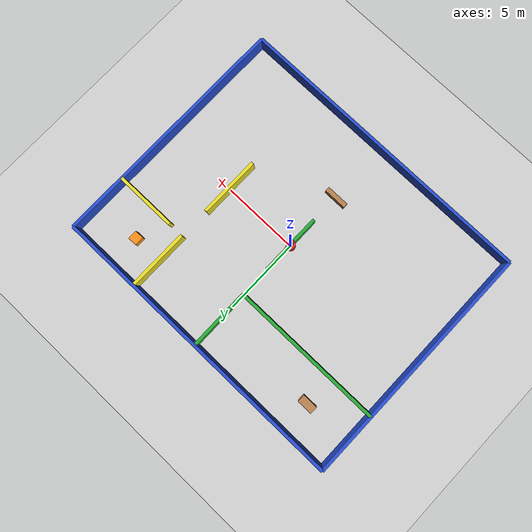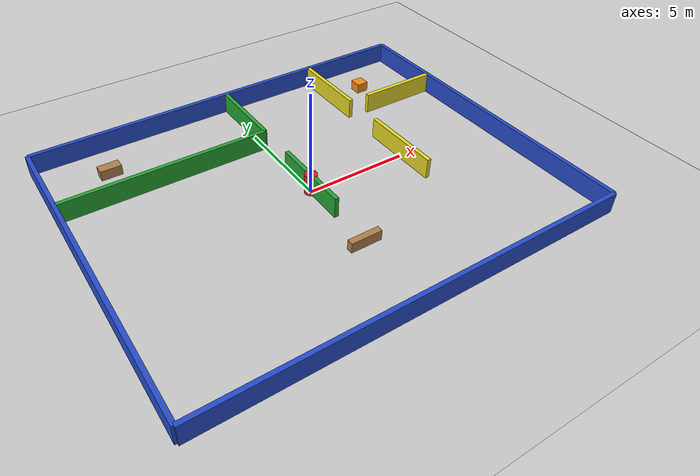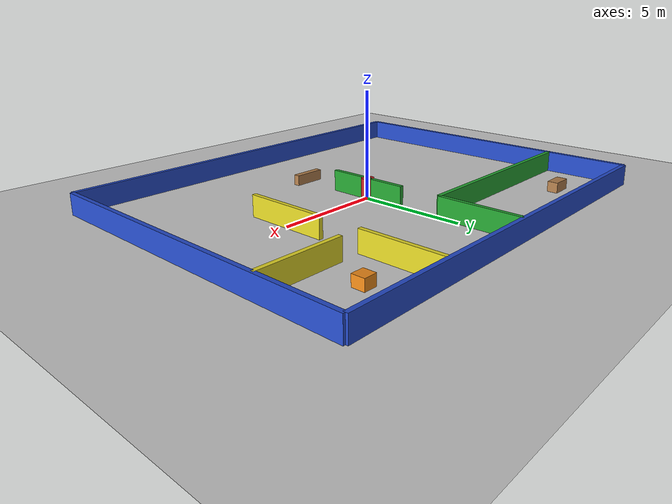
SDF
<?xml version='1.0'?>
<sdf version='1.7'>
  <world name='indoor_navigation_world'>

    <!-- 环境光照 -->
    <light name='sun' type='directional'>
      <cast_shadows>1</cast_shadows>
      <pose>0 0 10 0 -0 0</pose>
      <diffuse>0.8 0.8 0.8 1</diffuse>
      <specular>0.2 0.2 0.2 1</specular>
      <attenuation>
        <range>1000</range>
        <constant>0.9</constant>
        <linear>0.01</linear>
        <quadratic>0.001</quadratic>
      </attenuation>
      <direction>-0.5 0.1 -0.9</direction>
    </light>

    <!-- 地面 -->
    <model name='ground_plane'>
      <static>1</static>
      <link name='link'>
        <collision name='collision'>
          <geometry>
            <plane>
              <normal>0 0 1</normal>
              <size>20 20</size>
            </plane>
          </geometry>
          <surface>
            <friction>
              <ode>
                <mu>100</mu>
                <mu2>50</mu2>
              </ode>
            </friction>
          </surface>
        </collision>
        <visual name='visual'>
          <geometry>
            <plane>
              <normal>0 0 1</normal>
              <size>20 20</size>
            </plane>
          </geometry>
          <material>
            <script>
              <uri>file://media/materials/scripts/gazebo.material</uri>
              <name>Gazebo/Grey</name>
            </script>
          </material>
        </visual>
      </link>
    </model>

    <!-- ===== 墙壁定义 ===== -->

    <!-- 主走廊外墙壁 -->
    <!-- 北墙 -->
    <model name='wall_north'>
      <static>1</static>
      <pose>0 8 0.5 0 0 0</pose>
      <link name='link'>
        <collision name='collision'>
          <geometry>
            <box>
              <size>20 0.2 1</size>
            </box>
          </geometry>
        </collision>
        <visual name='visual'>
          <geometry>
            <box>
              <size>20 0.2 1</size>
            </box>
          </geometry>
          <material>
            <script>
              <name>Gazebo/Blue</name>
              <uri>file://media/materials/scripts/gazebo.material</uri>
            </script>
          </material>
        </visual>
      </link>
    </model>

    <!-- 南墙 -->
    <model name='wall_south'>
      <static>1</static>
      <pose>0 -8 0.5 0 0 0</pose>
      <link name='link'>
        <collision name='collision'>
          <geometry>
            <box>
              <size>20 0.2 1</size>
            </box>
          </geometry>
        </collision>
        <visual name='visual'>
          <geometry>
            <box>
              <size>20 0.2 1</size>
            </box>
          </geometry>
          <material>
            <script>
              <name>Gazebo/Blue</name>
              <uri>file://media/materials/scripts/gazebo.material</uri>
            </script>
          </material>
        </visual>
      </link>
    </model>

    <!-- 西墙 -->
    <model name='wall_west'>
      <static>1</static>
      <pose>-10 0 0.5 0 0 0</pose>
      <link name='link'>
        <collision name='collision'>
          <geometry>
            <box>
              <size>0.2 16 1</size>
            </box>
          </geometry>
        </collision>
        <visual name='visual'>
          <geometry>
            <box>
              <size>0.2 16 1</size>
            </box>
          </geometry>
          <material>
            <script>
              <name>Gazebo/Blue</name>
              <uri>file://media/materials/scripts/gazebo.material</uri>
            </script>
          </material>
        </visual>
      </link>
    </model>

    <!-- 东墙（中间有开口作为走廊连接） -->
    <model name='wall_east'>
      <static>1</static>
      <pose>10 0 0.5 0 0 0</pose>
      <link name='link'>
        <collision name='collision'>
          <geometry>
            <box>
              <size>0.2 16 1</size>
            </box>
          </geometry>
        </collision>
        <visual name='visual'>
          <geometry>
            <box>
              <size>0.2 16 1</size>
            </box>
          </geometry>
          <material>
            <script>
              <name>Gazebo/Blue</name>
              <uri>file://media/materials/scripts/gazebo.material</uri>
            </script>
          </material>
        </visual>
      </link>
    </model>

    <!-- ===== 房间墙壁 ===== -->

    <!-- 房间1（左上角房间） -->
    <!-- 房间1南墙 -->
    <model name='room1_south_wall'>
      <static>1</static>
      <pose>-5 4 0.5 0 0 0</pose>
      <link name='link'>
        <collision name='collision'>
          <geometry>
            <box>
              <size>10 0.2 1</size>
            </box>
          </geometry>
        </collision>
        <visual name='visual'>
          <geometry>
            <box>
              <size>10 0.2 1</size>
            </box>
          </geometry>
          <material>
            <script>
              <name>Gazebo/Green</name>
              <uri>file://media/materials/scripts/gazebo.material</uri>
            </script>
          </material>
        </visual>
      </link>
    </model>

    <!-- 房间1东墙（有门洞） -->
    <model name='room1_east_wall_left'>
      <static>1</static>
      <pose>0 6 0.5 0 0 0</pose>
      <link name='link'>
        <collision name='collision'>
          <geometry>
            <box>
              <size>0.2 4 1</size>
            </box>
          </geometry>
        </collision>
        <visual name='visual'>
          <geometry>
            <box>
              <size>0.2 4 1</size>
            </box>
          </geometry>
          <material>
            <script>
              <name>Gazebo/Green</name>
              <uri>file://media/materials/scripts/gazebo.material</uri>
            </script>
          </material>
        </visual>
      </link>
    </model>

    <model name='room1_east_wall_right'>
      <static>1</static>
      <pose>0 0 0.5 0 0 0</pose>
      <link name='link'>
        <collision name='collision'>
          <geometry>
            <box>
              <size>0.2 4 1</size>
            </box>
          </geometry>
        </collision>
        <visual name='visual'>
          <geometry>
            <box>
              <size>0.2 4 1</size>
            </box>
          </geometry>
          <material>
            <script>
              <name>Gazebo/Green</name>
              <uri>file://media/materials/scripts/gazebo.material</uri>
            </script>
          </material>
        </visual>
      </link>
    </model>

    <!-- 房间2（右上角房间） -->
    <!-- 房间2西墙（有门洞） -->
    <model name='room2_west_wall_top'>
      <static>1</static>
      <pose>5 6 0.5 0 0 0</pose>
      <link name='link'>
        <collision name='collision'>
          <geometry>
            <box>
              <size>0.2 4 1</size>
            </box>
          </geometry>
        </collision>
        <visual name='visual'>
          <geometry>
            <box>
              <size>0.2 4 1</size>
            </box>
          </geometry>
          <material>
            <script>
              <name>Gazebo/Yellow</name>
              <uri>file://media/materials/scripts/gazebo.material</uri>
            </script>
          </material>
        </visual>
      </link>
    </model>

    <model name='room2_west_wall_bottom'>
      <static>1</static>
      <pose>5 0 0.5 0 0 0</pose>
      <link name='link'>
        <collision name='collision'>
          <geometry>
            <box>
              <size>0.2 4 1</size>
            </box>
          </geometry>
        </collision>
        <visual name='visual'>
          <geometry>
            <box>
              <size>0.2 4 1</size>
            </box>
          </geometry>
          <material>
            <script>
              <name>Gazebo/Yellow</name>
              <uri>file://media/materials/scripts/gazebo.material</uri>
            </script>
          </material>
        </visual>
      </link>
    </model>

    <!-- 房间2南墙 -->
    <model name='room2_south_wall'>
      <static>1</static>
      <pose>8 4 0.5 0 0 0</pose>
      <link name='link'>
        <collision name='collision'>
          <geometry>
            <box>
              <size>4 0.2 1</size>
            </box>
          </geometry>
        </collision>
        <visual name='visual'>
          <geometry>
            <box>
              <size>4 0.2 1</size>
            </box>
          </geometry>
          <material>
            <script>
              <name>Gazebo/Yellow</name>
              <uri>file://media/materials/scripts/gazebo.material</uri>
            </script>
          </material>
        </visual>
      </link>
    </model>

    <!-- ===== 障碍物 ===== -->

    <!-- 主走廊中的圆柱形障碍物 -->
    <model name='cylinder_obstacle'>
      <static>1</static>
      <pose>0 0 0.5 0 0 0</pose>
      <link name='link'>
        <collision name='collision'>
          <geometry>
            <cylinder>
              <radius>0.3</radius>
              <length>1</length>
            </cylinder>
          </geometry>
        </collision>
        <visual name='visual'>
          <geometry>
            <cylinder>
              <radius>0.3</radius>
              <length>1</length>
            </cylinder>
          </geometry>
          <material>
            <script>
              <name>Gazebo/Red</name>
              <uri>file://media/materials/scripts/gazebo.material</uri>
            </script>
          </material>
        </visual>
      </link>
    </model>

    <!-- 房间1中的桌子 -->
    <model name='table_room1'>
      <static>1</static>
      <pose>-7 6 0.25 0 0 0</pose>
      <link name='link'>
        <collision name='collision'>
          <geometry>
            <box>
              <size>1 0.5 0.5</size>
            </box>
          </geometry>
        </collision>
        <visual name='visual'>
          <geometry>
            <box>
              <size>1 0.5 0.5</size>
            </box>
          </geometry>
          <material>
            <script>
              <name>Gazebo/Wood</name>
              <uri>file://media/materials/scripts/gazebo.material</uri>
            </script>
          </material>
        </visual>
      </link>
    </model>

    <!-- 房间2中的箱子堆 -->
    <model name='box_stack'>
      <static>1</static>
      <pose>7 6 0.25 0 0 0</pose>
      <link name='link'>
        <collision name='collision'>
          <geometry>
            <box>
              <size>0.6 0.6 0.5</size>
            </box>
          </geometry>
        </collision>
        <visual name='visual'>
          <geometry>
            <box>
              <size>0.6 0.6 0.5</size>
            </box>
          </geometry>
          <material>
            <script>
              <name>Gazebo/Orange</name>
              <uri>file://media/materials/scripts/gazebo.material</uri>
            </script>
          </material>
        </visual>
      </link>
    </model>

    <!-- 走廊中的长凳 -->
    <model name='bench'>
      <static>1</static>
      <pose>0 -4 0.25 0 0 0</pose>
      <link name='link'>
        <collision name='collision'>
          <geometry>
            <box>
              <size>1.5 0.3 0.5</size>
            </box>
          </geometry>
        </collision>
        <visual name='visual'>
          <geometry>
            <box>
              <size>1.5 0.3 0.5</size>
            </box>
          </geometry>
          <material>
            <script>
              <name>Gazebo/Wood</name>
              <uri>file://media/materials/scripts/gazebo.material</uri>
            </script>
          </material>
        </visual>
      </link>
    </model>

    <!-- 物理和场景设置 -->
    <gravity>0 0 -9.8</gravity>
    <physics type='ode'>
      <max_step_size>0.01</max_step_size>
      <real_time_factor>1</real_time_factor>
      <real_time_update_rate>1000</real_time_update_rate>
      <solver>
        <type>quick</type>
        <iters>10</iters>
        <sor>1.3</sor>
      </solver>
    </physics>

    <scene>
      <ambient>0.4 0.4 0.4 1</ambient>
      <background>0.7 0.7 0.7 1</background>
      <shadows>1</shadows>
    </scene>

    <!-- GUI相机视角 -->
    <gui fullscreen='0'>
      <camera name='overview_camera'>
        <pose>0 0 15 0 1.57 0</pose>
        <view_controller>orbit</view_controller>
      </camera>
    </gui>

  </world>
</sdf>
